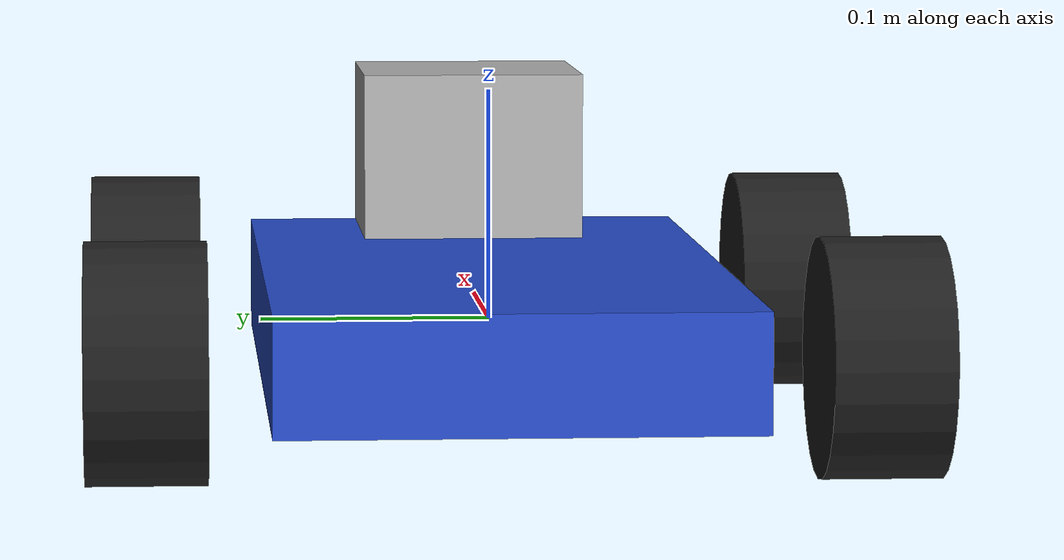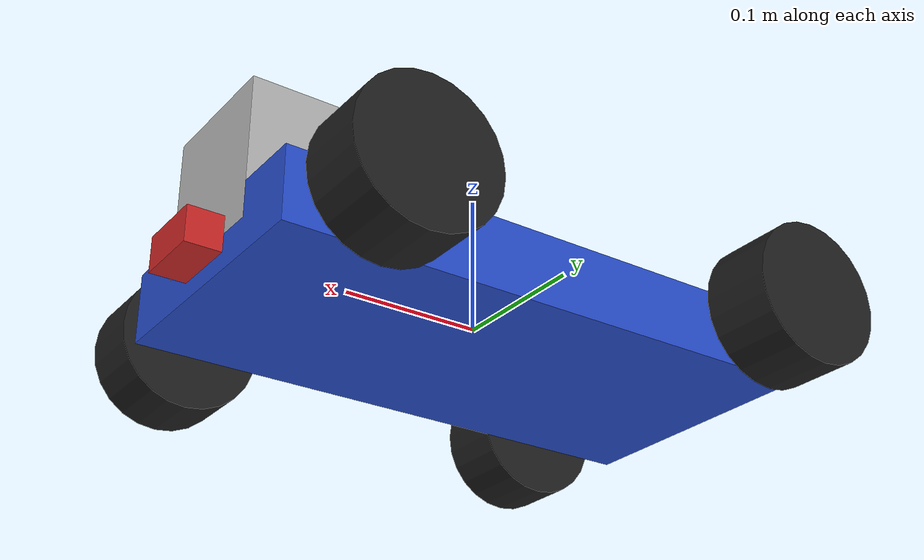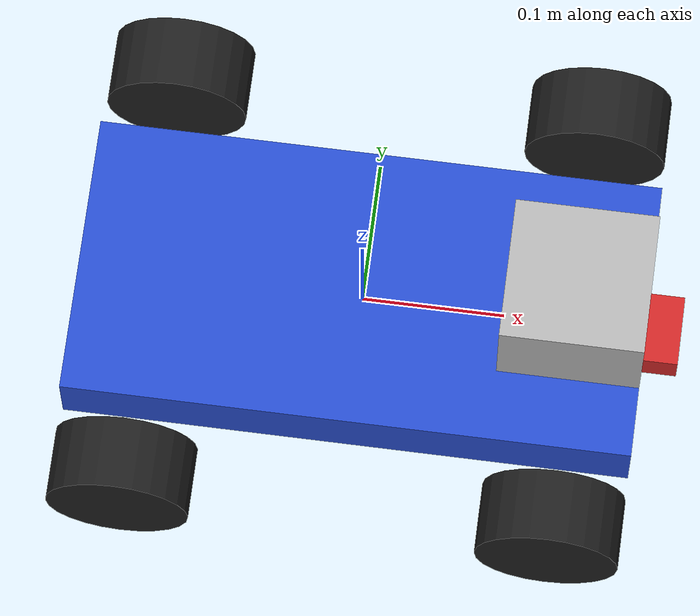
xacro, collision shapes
<?xml version='1.0'?>

<robot name="my_robot" xmlns:xacro="http://www.ros.org/wiki/xacro">

  <!-- variables-->
  <xacro:property name="mass_wheel" value="0.50"/>
  <xacro:property name="length_wheel" value="0.05"/>
  <xacro:property name="radius_wheel" value="0.05"/>

  <!-- Macro for calculating inertia of cylindric wheel -->
  <xacro:macro name="wheel_inertia" params="m r h">
     <inertia ixx="${ m * ( 3 * r*r + h*h ) / 12}" ixy="0" ixz="0"
               iyy="${ m * ( 3 * r*r + h*h ) / 12}" iyz="0"
               izz="${ m * r / 2}" />
  </xacro:macro>

  <xacro:include filename="$(find my_robot)/urdf/my_robot.gazebo" />

  <link name="robot_footprint"></link>

  <joint name="robot_footprint_joint" type="fixed">
    <origin xyz="0 0 0" rpy="0 0 0" />
    <parent link="robot_footprint"/>
    <child link="chassis" />
  </joint>

  <link name='chassis'>
    <pose>0 0 0.05 0 0 0</pose>

    <inertial>
      <mass value="15.0"/>
      <origin xyz="0.0 0 0" rpy=" 0 0 0"/>
      <inertia
          ixx="0.1" ixy="0" ixz="0"
          iyy="0.1" iyz="0"
          izz="0.1"
      />
    </inertial>

    <collision name='collision'>
      <origin xyz="0 0 0" rpy=" 0 0 0"/>
      <geometry>
        <box size=".4 .2 .05"/>
      </geometry>
    </collision>

    <visual name='chassis_visual'>
      <origin xyz="0 0 0" rpy=" 0 0 0"/>
      <geometry>
        <box size=".4 .2 .05"/>
      </geometry>
    </visual>

  </link>

  <link name="front_left_wheel">
    <inertial>
      <origin xyz="0 0 0" rpy="0 1.5707 1.5707"/>
      <mass value="${mass_wheel}"/>
      <wheel_inertia m="${mass_wheel}" r="${radius_wheel}" h="${length_wheel}" />
    </inertial>
    <collision>
      <origin xyz="0 0 0" rpy="0 1.5707 1.5707" />
      <geometry>
        <cylinder radius="${radius_wheel}" length="${length_wheel}" />
      </geometry>
    </collision>
    <visual>
      <origin xyz="0 0 0" rpy="0 1.5707 1.5707"/>
      <geometry>
        <cylinder length="${length_wheel}" radius="${radius_wheel}"/>
      </geometry>
    </visual>
  </link>

  <link name="back_left_wheel">
    <inertial>
      <origin xyz="0 0 0" rpy="0 1.5707 1.5707"/>
      <mass value="${mass_wheel}"/>
      <wheel_inertia m="${mass_wheel}" r="${radius_wheel}" h="${length_wheel}" />
    </inertial>
    <collision>
      <origin xyz="0 0 0" rpy="0 1.5707 1.5707" />
      <geometry>
        <cylinder radius="${radius_wheel}" length="${length_wheel}" />
      </geometry>
    </collision>
    <visual>
      <origin xyz="0 0 0" rpy="0 1.5707 1.5707"/>
      <geometry>
        <cylinder length="${length_wheel}" radius="${radius_wheel}"/>
      </geometry>
    </visual>
  </link>

  <link name="front_right_wheel">
    <inertial>
      <origin xyz="0 0 0" rpy=" 0 1.5707 1.5707"/>
      <mass value="${mass_wheel}"/>
      <wheel_inertia m="${mass_wheel}" r="${radius_wheel}" h="${length_wheel}" />
    </inertial>
    <collision>
      <origin xyz="0 0 0" rpy="0 1.5707 1.5707" />
      <geometry>
        <cylinder radius="${radius_wheel}" length="${length_wheel}" />
      </geometry>
    </collision>
    <visual>
      <origin xyz="0 0 0" rpy=" 0 1.5707 1.5707"/>
      <geometry>
        <cylinder length="${length_wheel}" radius="${radius_wheel}"/>
      </geometry>
    </visual>
  </link>

  <link name="back_right_wheel">
    <inertial>
      <origin xyz="0 0 0" rpy=" 0 1.5707 1.5707"/>
      <mass value="${mass_wheel}"/>
      <wheel_inertia m="${mass_wheel}" r="${radius_wheel}" h="${length_wheel}" />
    </inertial>
    <collision>
      <origin xyz="0 0 0" rpy="0 1.5707 1.5707" />
      <geometry>
        <cylinder radius="${radius_wheel}" length="${length_wheel}" />
      </geometry>
    </collision>
    <visual>
      <origin xyz="0 0 0" rpy=" 0 1.5707 1.5707"/>
      <geometry>
        <cylinder length="${length_wheel}" radius="${radius_wheel}"/>
      </geometry>
    </visual>
  </link>

  <link name="camera">
    <inertial>
      <origin xyz="0 0 0" rpy=" 0 0 0"/>
      <mass value="0.1"/>
      <inertia
          ixx="1e-6" ixy="0" ixz="0"
          iyy="1e-6" iyz="0"
          izz="1e-6"
      />
    </inertial>
    <collision>
      <origin xyz="0 0 0" rpy="0 0 0" />
      <geometry>
        <box size=".05 .05 .025"/>
      </geometry>
    </collision>
    <visual>
      <origin xyz="0 0 0" rpy=" 0 0 0"/>
      <geometry>
        <mesh filename="package://my_robot/meshes/kinect.dae"/>
      </geometry>
    </visual>
  </link>

  <link name="hokuyo">
    <inertial>
      <origin xyz="0 0 0" rpy=" 0 0 0"/>
      <mass value="1e-5"/>
      <inertia
          ixx="1e-6" ixy="0" ixz="0"
          iyy="1e-6" iyz="0"
          izz="1e-6"
      />
    </inertial>
    <collision>
      <origin xyz="0 0 0" rpy="0 0 0" />
      <geometry>
        <box size="0.1 0.1 0.1"/>
      </geometry>
    </collision>
    <visual>
      <origin xyz="0 0 0" rpy=" 0 0 0"/>
      <geometry>
        <mesh filename="package://my_robot/meshes/hokuyo.dae"/>
      </geometry>
    </visual>
  </link>

  <link name="camera_link_optical"></link>

  <joint name="front_left_wheel_joint" type="continuous">
    <origin xyz="0.15 0.15 0" rpy="0 0 0"/>
    <parent link="chassis"/>
    <child link="front_left_wheel"/>
    <axis xyz="0 1 0" rpy="0 0 0"/>
    <dynamics damping="1.0" friction="1.0"/>
    <limit effort="10000" velocity="1000"/>
    <type>transmission_interface/SimpleTransmission</type>
  </joint>

  <joint name="back_left_wheel_joint" type="continuous">
    <origin xyz="-0.15 0.15 0" rpy="0 0 0"/>
    <parent link="chassis"/>
    <child link="back_left_wheel"/>
    <axis xyz="0 1 0" rpy="0 0 0"/>
    <dynamics damping="1.0" friction="1.0"/>
    <limit effort="10000" velocity="1000"/>
    <type>transmission_interface/SimpleTransmission</type>
  </joint>

  <joint name="front_right_wheel_joint" type="continuous">
    <origin xyz="0.15 -0.15 0" rpy="0 0 0"/>
    <parent link="chassis"/>
    <child link="front_right_wheel"/>
    <axis xyz="0 1 0" rpy="0 0 0"/>
    <dynamics damping="1.0" friction="1.0"/>
    <limit effort="10000" velocity="1000"/>
    <type>transmission_interface/SimpleTransmission</type>
  </joint>

  <joint name="back_right_wheel_joint" type="continuous">
    <origin xyz="-0.15 -0.15 0" rpy="0 0 0"/>
    <parent link="chassis"/>
    <child link="back_right_wheel"/>
    <axis xyz="0 1 0" rpy="0 0 0"/>
    <dynamics damping="1.0" friction="1.0"/>
    <limit effort="10000" velocity="1000"/>
    <type>transmission_interface/SimpleTransmission</type>
  </joint>

  <joint name="camera_joint" type="fixed">
    <origin xyz="0.2 0 0" rpy="0 0 0"/>
    <parent link="chassis"/>
    <child link="camera"/>
    <axis xyz="0 1 0" rpy="0 0 0"/>
    <limit effort="10000" velocity="1000"/>
    <joint_properties damping="1.0" friction="1.0"/>
  </joint>

  <joint name="hokuyo_joint" type="fixed">
    <origin xyz="0.15 0 0.05" rpy="0 0 0"/>
    <parent link="chassis"/>
    <child link="hokuyo"/>
    <axis xyz="0 1 0" rpy="0 0 0"/>
  </joint>

  <joint name="camera_optical_joint" type="fixed">
    <origin xyz="0 0 0" rpy="-1.5707 0 -1.5707"/>
    <parent link="camera"/>
    <child link="camera_link_optical"/>
    <limit effort="10000" velocity="1000"/>
    <joint_properties damping="1.0" friction="1.0"/>
  </joint>

  <gazebo reference="chassis">
    <material>Gazebo/Blue</material>
  </gazebo>

  <gazebo reference="camera">
    <material>Gazebo/Red</material>
  </gazebo>

  <gazebo reference="front_left_wheel">
    <material>Gazebo/Black</material>
    <!-- kp and kd for rubber -->
    <kp>1000000.0</kp>
    <kd>100.0</kd>
    <mu1>1.0</mu1>
    <mu2>1.0</mu2>
    <maxVel>1.0</maxVel>
    <minDepth>0.00</minDepth>
  </gazebo>

  <gazebo reference="back_left_wheel">
    <material>Gazebo/Black</material>
    <!-- kp and kd for rubber -->
    <kp>1000000.0</kp>
    <kd>100.0</kd>
    <mu1>1.0</mu1>
    <mu2>1.0</mu2>
    <maxVel>1.0</maxVel>
    <minDepth>0.00</minDepth>
  </gazebo>

  <gazebo reference="front_right_wheel">
    <material>Gazebo/Black</material>
    <!-- kp and kd for rubber -->
    <kp>1000000.0</kp>
    <kd>100.0</kd>
    <mu1>1.0</mu1>
    <mu2>1.0</mu2>
    <maxVel>1.0</maxVel>
    <minDepth>0.00</minDepth>
  </gazebo>

  <gazebo reference="back_right_wheel">
    <material>Gazebo/Black</material>
    <!-- kp and kd for rubber -->
    <kp>1000000.0</kp>
    <kd>100.0</kd>
    <mu1>1.0</mu1>
    <mu2>1.0</mu2>
    <maxVel>1.0</maxVel>
    <minDepth>0.00</minDepth>
  </gazebo>

  <transmission name="front_left_wheel_joint_trans" >
   <type>transmission_interface/SimpleTransmission</type>
   <joint name="front_left_wheel_joint">
     <hardwareInterface>hardware_interface/EffortJointInterface</hardwareInterface>
   </joint>
   <actuator name="front_left_wheel_joint_motor">
     <hardwareInterface>hardware_interface/EffortJointInterface</hardwareInterface>
     <mechanicalReduction>1</mechanicalReduction>
   </actuator>
  </transmission>

  <transmission name="back_left_wheel_joint_trans" >
   <type>transmission_interface/SimpleTransmission</type>
   <joint name="back_left_wheel_joint">
     <hardwareInterface>hardware_interface/EffortJointInterface</hardwareInterface>
   </joint>
   <actuator name="back_left_wheel_joint_motor">
     <hardwareInterface>hardware_interface/EffortJointInterface</hardwareInterface>
     <mechanicalReduction>1</mechanicalReduction>
   </actuator>
  </transmission>

  <transmission name="front_right_wheel_joint_trans" >
   <type>transmission_interface/SimpleTransmission</type>
   <joint name="front_right_wheel_joint">
     <hardwareInterface>hardware_interface/EffortJointInterface</hardwareInterface>
   </joint>
   <actuator name="front_right_wheel_joint_motor">
     <hardwareInterface>hardware_interface/EffortJointInterface</hardwareInterface>
     <mechanicalReduction>1</mechanicalReduction>
   </actuator>
  </transmission>

  <transmission name="back_right_wheel_joint_trans" >
   <type>transmission_interface/SimpleTransmission</type>
   <joint name="back_right_wheel_joint">
     <hardwareInterface>hardware_interface/EffortJointInterface</hardwareInterface>
   </joint>
   <actuator name="back_right_wheel_joint_motor">
     <hardwareInterface>hardware_interface/EffortJointInterface</hardwareInterface>
     <mechanicalReduction>1</mechanicalReduction>
   </actuator>
  </transmission>

</robot>
